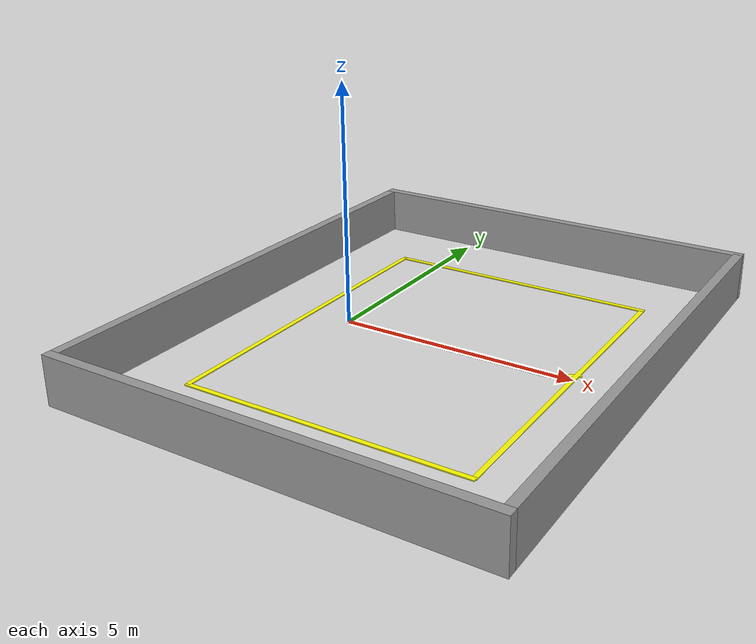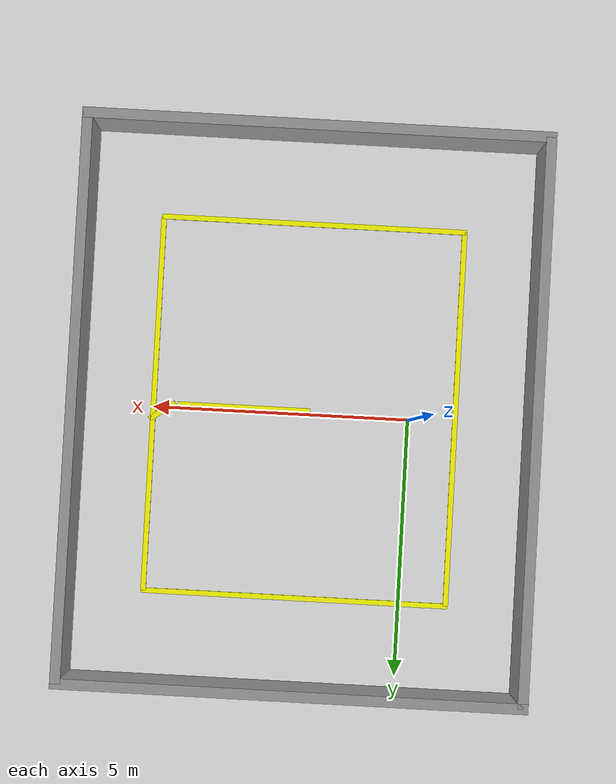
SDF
<?xml version="1.0"?>
<sdf version='1.6'>
  <world name='default'>
    <light name='sun' type='directional'>
      <cast_shadows>1</cast_shadows>
      <pose frame=''>0 0 10 0 -0 0</pose>
      <diffuse>0.8 0.8 0.8 1</diffuse>
      <specular>0.1 0.1 0.1 1</specular>
      <attenuation>
        <range>1000</range>
        <constant>0.9</constant>
        <linear>0.01</linear>
        <quadratic>0.001</quadratic>
      </attenuation>
      <direction>-0.5 0.5 -1</direction>
    </light>
    <gravity>0 0 -9.8</gravity>
    <magnetic_field>6e-06 2.3e-05 -4.2e-05</magnetic_field>
    <atmosphere type='adiabatic'/>
    <physics name='default_physics' default='0' type='ode'>
      <max_step_size>0.001</max_step_size>
      <real_time_factor>1</real_time_factor>
      <real_time_update_rate>1000</real_time_update_rate>
    </physics>
    <scene>
      <ambient>0.4 0.4 0.4 1</ambient>
      <background>0.7 0.7 0.7 1</background>
      <shadows>1</shadows>
    </scene>
    <spherical_coordinates>
      <surface_model>EARTH_WGS84</surface_model>
      <latitude_deg>0</latitude_deg>
      <longitude_deg>0</longitude_deg>
      <elevation>0</elevation>
      <heading_deg>0</heading_deg>
    </spherical_coordinates>

    <model name='yellow_room_outline'>
      <static>1</static>

      <link name='outline'>
        <collision name='collision'>
          <geometry>
            <plane>
              <normal>0 0 1</normal>
              <size>0.1 0.1</size>
            </plane>
          </geometry>
          <surface>
            <friction>
              <ode>
                <mu>100</mu>
                <mu2>50</mu2>
              </ode>
            </friction>
          </surface>
        </collision>

        <!-- 顶部横线 -->
        <visual name='top'>
          <pose>0 3.675 0.01 0 0 0</pose>
          <geometry>
            <box>
              <size>6.0 0.1 0.02</size>
            </box>
          </geometry>
          <material>
            <ambient>1 1 0 1</ambient>  <!-- 环境光：黄色 -->
            <diffuse>1 1 0 1</diffuse>  <!-- 漫反射：黄色 -->
            <specular>0.1 0.1 0.1 1</specular>
          </material>
        </visual>

        <!-- 底部横线 -->
        <visual name='bottom'>
          <pose>0 -3.675 0.01 0 0 0</pose>
          <geometry>
            <box>
              <size>6.0 0.1 0.02</size>
            </box>
          </geometry>
          <material>
            <ambient>1 1 0 1</ambient>  <!-- 环境光：黄色 -->
            <diffuse>1 1 0 1</diffuse>  <!-- 漫反射：黄色 -->
            <specular>0.1 0.1 0.1 1</specular>
          </material>
        </visual>

        <!-- 左侧竖线 -->
        <visual name='left'>
          <pose>-2.9625 0 0.01 0 0 0</pose>
          <geometry>
            <box>
              <size>0.1 7.35 0.02</size>
            </box>
          </geometry>
          <material>
            <ambient>1 1 0 1</ambient>  <!-- 环境光：黄色 -->
            <diffuse>1 1 0 1</diffuse>  <!-- 漫反射：黄色 -->
            <specular>0.1 0.1 0.1 1</specular>
          </material>
        </visual>

        <!-- 右侧竖线 -->
        <visual name='right'>
          <pose>2.9625 0 0.01 0 0 0</pose>
          <geometry>
            <box>
              <size>0.1 7.35 0.02</size>
            </box>
          </geometry>
          <material>
            <ambient>1 1 0 1</ambient>  <!-- 环境光：黄色 -->
            <diffuse>1 1 0 1</diffuse>  <!-- 漫反射：黄色 -->
            <specular>0.1 0.1 0.1 1</specular>
          </material>
        </visual>

        <!-- 外墙 - 顶部 -->
        <visual name='outer_top'>
          <pose>0 5.4 0.5 0 0 0</pose>
          <geometry>
            <box>
              <size>9.0 0.2 1.0</size>
            </box>
          </geometry>
          <material>
            <script>
              <uri>file://media/materials/scripts/gazebo.material</uri>
              <name>Gazebo/Grey</name>
            </script>
          </material>
        </visual>

        <!-- 外墙 - 底部 -->
        <visual name='outer_bottom'>
          <pose>0 -5.4 0.5 0 0 0</pose>
          <geometry>
            <box>
              <size>9.0 0.2 1.0</size>
            </box>
          </geometry>
          <material>
            <script>
              <uri>file://media/materials/scripts/gazebo.material</uri>
              <name>Gazebo/Grey</name>
            </script>
          </material>
        </visual>

        <!-- 外墙 - 左侧 -->
        <visual name='outer_left'>
          <pose>-4.4 0 0.5 0 0 0</pose>
          <geometry>
            <box>
              <size>0.2 10.8 1.0</size>
            </box>
          </geometry>
          <material>
            <script>
              <uri>file://media/materials/scripts/gazebo.material</uri>
              <name>Gazebo/Grey</name>
            </script>
          </material>
        </visual>

        <!-- 外墙 - 右侧 -->
        <visual name='outer_right'>
          <pose>4.4 0 0.5 0 0 0</pose>
          <geometry>
            <box>
              <size>0.2 10.8 1.0</size>
            </box>
          </geometry>
          <material>
            <script>
              <uri>file://media/materials/scripts/gazebo.material</uri>
              <name>Gazebo/Grey</name>
            </script>
          </material>
        </visual>

        <!-- 新增: 从机器人位置到右侧线段的连接线 -->
        <visual name='yellow_horizion'>
          <pose>1.18125 0 0.01 0 0 0</pose>
          <geometry>
            <box>
              <size>2.6 0.1 0.02</size>
            </box>
          </geometry>
          <material>
            <ambient>1 1 0 1</ambient>  <!-- 环境光：黄色 -->
            <diffuse>1 1 0 1</diffuse>  <!-- 漫反射：黄色 -->
            <specular>0.1 0.1 0.1 1</specular>
          </material>
        </visual>

        <visual name='robot_to_right'>
          <pose>2.78125 0.15 0.01 0 0 0.6</pose>
          <geometry>
            <box>
              <size>0.6 0.1 0.02</size>
            </box>
          </geometry>
          <!-- 替代材质脚本 -->
          <material>
            <ambient>1 1 0 1</ambient>  <!-- 环境光：黄色 -->
            <diffuse>1 1 0 1</diffuse>  <!-- 漫反射：黄色 -->
            <specular>0.1 0.1 0.1 1</specular>
          </material>
        </visual>

      </link>

      <pose frame=''>2.03304 -0.08026 0 0 0 0</pose>
    </model>

    <gui fullscreen='0'>
      <camera name='user_camera'>
        <pose frame=''>-1.96488 -4.86229 8.96244 -0 1.5658 -0.025581</pose>
        <view_controller>orbit</view_controller>
        <projection_type>perspective</projection_type>
      </camera>
    </gui>
  </world>
</sdf>
